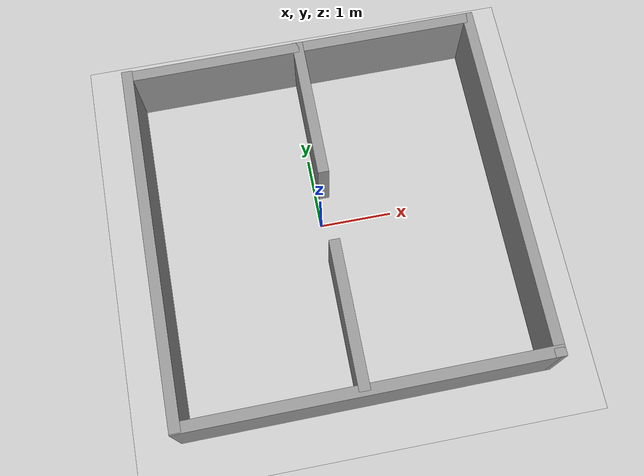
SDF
<sdf version="1.7">
 <world name="default">
  <light name="sun" type="directional">
   <pose>0 0 10 0 -0 0</pose>
   <diffuse>0.8 0.8 0.8 1</diffuse>
   <specular>0.2 0.2 0.2 1</specular>
   <attenuation>
    <range>1000</range>
    <constant>0.9</constant>
    <linear>0.01</linear>
    <quadratic>0.001</quadratic>
   </attenuation>
   <direction>-0.5 0.1 -0.9</direction>
   <spot><inner_angle>0</inner_angle><outer_angle>0</outer_angle><falloff>0</falloff></spot>
  </light>
  <model name="ground_plane">
   <static>1</static>
   <link name="link">
    <collision name="collision">
     <geometry><plane><normal>0 0 1</normal><size>100 100</size></plane></geometry>
     <surface>
      <contact><collide_bitmask>65535</collide_bitmask></contact>
      <friction><ode><mu>100</mu><mu2>50</mu2></ode></friction>
     </surface>
    </collision>
    <visual name="visual">
     <cast_shadows>0</cast_shadows>
     <geometry><plane><normal>0 0 1</normal><size>100 100</size></plane></geometry>
     <material>
      <script><uri>file://media/materials/scripts/gazebo.material</uri><name>Gazebo/Grey</name></script>
     </material>
    </visual>
   </link>
  </model>
  <gravity>0 0 -9.8</gravity>
  <magnetic_field>6e-06 2.3e-05 -4.2e-05</magnetic_field>
  <atmosphere type="adiabatic"/>
  <physics type="ode">
   <max_step_size>0.001</max_step_size>
   <real_time_factor>1</real_time_factor>
   <real_time_update_rate>1000</real_time_update_rate>
  </physics>
  <scene><ambient>0.4 0.4 0.4 1</ambient><background>0.7 0.7 0.7 1</background><shadows>1</shadows></scene>
  <spherical_coordinates>
   <surface_model>EARTH_WGS84</surface_model>
   <latitude_deg>0</latitude_deg>
   <longitude_deg>0</longitude_deg>
   <elevation>0</elevation>
   <heading_deg>0</heading_deg>
  </spherical_coordinates>
  <model name="labirent">
   <pose>0.145297 1.42392 0 0 -0 0</pose>
   <link name="Wall_0">
    <collision name="Wall_0_Collision">
     <geometry><box><size>5.0133 0.15 1</size></box></geometry>
     <pose>0 0 0.5 0 -0 0</pose>
    </collision>
    <visual name="Wall_0_Visual">
     <pose>0 0 0.5 0 -0 0</pose>
     <geometry><box><size>5.0133 0.15 1</size></box></geometry>
     <material>
      <script><uri>file://media/materials/scripts/gazebo.material</uri><name>Gazebo/Grey</name></script>
      <ambient>1 1 1 1</ambient>
     </material>
     <meta><layer>0</layer></meta>
    </visual>
    <pose>0 0.909204 0 0 -0 0.005439</pose>
   </link>
   <link name="Wall_2">
    <collision name="Wall_2_Collision">
     <geometry><box><size>5.013 0.15 1</size></box></geometry>
     <pose>0 0 0.5 0 -0 0</pose>
    </collision>
    <visual name="Wall_2_Visual">
     <pose>0 0 0.5 0 -0 0</pose>
     <geometry><box><size>5.013 0.15 1</size></box></geometry>
     <material>
      <script><uri>file://media/materials/scripts/gazebo.material</uri><name>Gazebo/Grey</name></script>
      <ambient>1 1 1 1</ambient>
     </material>
     <meta><layer>0</layer></meta>
    </visual>
    <pose>2.43161 -1.50907 0 0 -0 -1.5708</pose>
   </link>
   <link name="Wall_3">
    <collision name="Wall_3_Collision">
     <geometry><box><size>5.0133 0.15 1</size></box></geometry>
     <pose>0 0 0.5 0 -0 0</pose>
    </collision>
    <visual name="Wall_3_Visual">
     <pose>0 0 0.5 0 -0 0</pose>
     <geometry><box><size>5.0133 0.15 1</size></box></geometry>
     <material>
      <script><uri>file://media/materials/scripts/gazebo.material</uri><name>Gazebo/Grey</name></script>
      <ambient>1 1 1 1</ambient>
     </material>
     <meta><layer>0</layer></meta>
    </visual>
    <pose>0 -3.9538 0 0 -0 -3.13615</pose>
   </link>
   <link name="Wall_4">
    <collision name="Wall_4_Collision">
     <geometry><box><size>5.013 0.15 1</size></box></geometry>
     <pose>0 0 0.5 0 -0 0</pose>
    </collision>
    <visual name="Wall_4_Visual">
     <pose>0 0 0.5 0 -0 0</pose>
     <geometry><box><size>5.013 0.15 1</size></box></geometry>
     <material>
      <script><uri>file://media/materials/scripts/gazebo.material</uri><name>Gazebo/Grey</name></script>
      <ambient>1 1 1 1</ambient>
     </material>
     <meta><layer>0</layer></meta>
    </visual>
    <pose>-2.43161 -1.5223 0 0 -0 1.5708</pose>
   </link>
   <link name="Wall_6">
    <collision name="Wall_6_Collision">
     <geometry><box><size>2 0.15 1</size></box></geometry>
     <pose>0 0 0.5 0 -0 0</pose>
    </collision>
    <visual name="Wall_6_Visual">
     <pose>0 0 0.5 0 -0 0</pose>
     <geometry><box><size>2 0.15 1</size></box></geometry>
     <material>
      <script><uri>file://media/materials/scripts/gazebo.material</uri><name>Gazebo/Grey</name></script>
      <ambient>1 1 1 1</ambient>
     </material>
     <meta><layer>0</layer></meta>
    </visual>
    <pose>-0.024387 -0.013572 0 0 -0 -1.5708</pose>
   </link>
   <link name="Wall_9">
    <collision name="Wall_9_Collision">
     <geometry><box><size>2 0.15 1</size></box></geometry>
     <pose>0 0 0.5 0 -0 0</pose>
    </collision>
    <visual name="Wall_9_Visual">
     <pose>0 0 0.5 0 -0 0</pose>
     <geometry><box><size>2 0.15 1</size></box></geometry>
     <material>
      <script><uri>file://media/materials/scripts/gazebo.material</uri><name>Gazebo/Grey</name></script>
      <ambient>1 1 1 1</ambient>
     </material>
     <meta><layer>0</layer></meta>
    </visual>
    <pose>-0.064387 -2.96657 0 0 -0 1.5708</pose>
   </link>
   <static>1</static>
  </model>
 </world>
</sdf>
